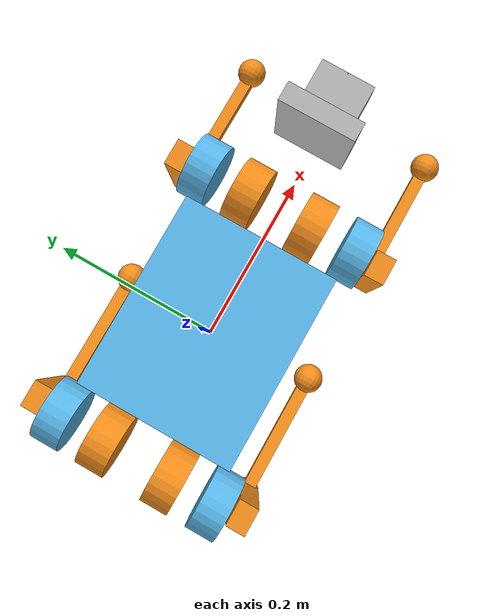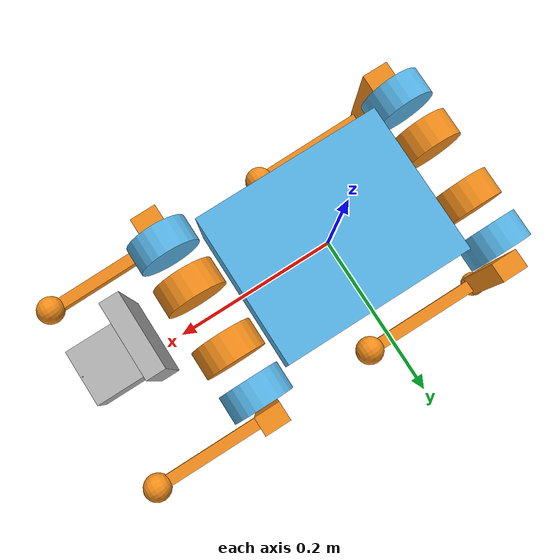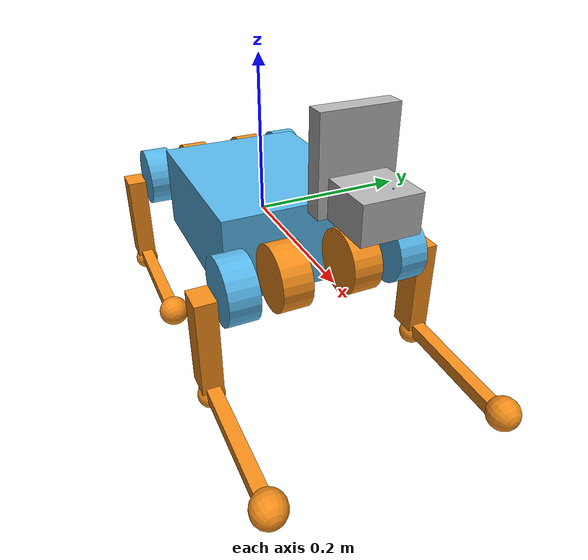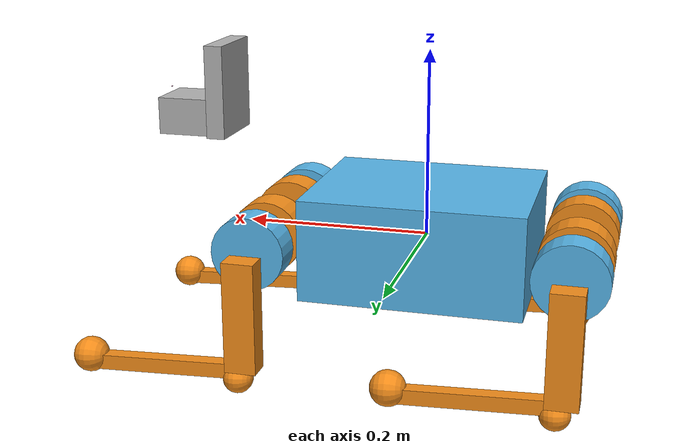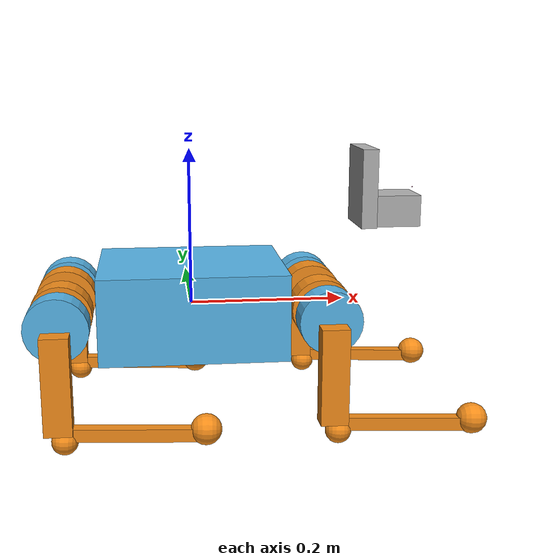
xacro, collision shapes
<?xml version="1.0"?>
<robot name="cyber_dog" xmlns:xacro="http://www.ros.org/wiki/xacro">

    <xacro:arg name="ROBOT" default="cyber_dog" />
    <xacro:arg name="USE_LIDAR" default="false" />
    <xacro:include filename="const.xacro" />
    <xacro:include filename="leg.xacro" />
    <xacro:include filename="gazebo.xacro" />

    <link name="base_link">
        <visual>
            <origin rpy="0 0 0" xyz="0 0 0" />
            <geometry>
                <box size="0.001 0.001 0.001" />
            </geometry>
        </visual>
    </link>

    <joint name="floating_base" type="fixed">
        <origin rpy="0 0 0" xyz="0 0 0" />
        <parent link="base_link" />
        <child link="body" />
    </joint>

    <link name="body">
        <visual>
            <origin rpy="0 0 0" xyz="0 0 0" />
            <geometry>
                <mesh filename="file://$(find cyberdog_description)/meshes/body.dae" scale="1 1 1" />
            </geometry>
        </visual>
        <collision>
            <origin rpy="0 0 0" xyz="0 0 0" />
            <geometry>
                <box size="${body_length} ${body_width} ${body_height}" />
            </geometry>
        </collision>
        <inertial>
            <origin rpy="0 0 0" xyz="${body_com_x} ${body_com_y} ${body_com_z}" />
            <mass value="${body_mass}" />
            <inertia ixx="${body_ixx}" ixy="${body_ixy}" ixz="${body_ixz}" iyy="${body_iyy}" iyz="${body_iyz}" izz="${body_izz}" />
        </inertial>
    </link>

    <joint name="imu_joint" type="fixed">
        <parent link="body" />
        <child link="imu_link" />
        <origin rpy="0 0 0" xyz="33.4e-3 -17.2765e-3 51.0469e-3" />
    </joint>

    <link name="imu_link">
        <inertial>
            <mass value="0.001" />
            <origin rpy="0 0 0" xyz="0 0 0" />
            <inertia ixx="0.0001" ixy="0" ixz="0" iyy="0.0001" iyz="0" izz="0.0001" />
        </inertial>
        <visual>
            <origin rpy="0 0 0" xyz="0 0 0" />
            <geometry>
                <box size="0.001 0.001 0.001" />
            </geometry>
        </visual>
        <collision>
            <origin rpy="0 0 0" xyz="0 0 0" />
            <geometry>
                <box size=".001 .001 .001" />
            </geometry>
        </collision>
    </link>

    <joint name="scan_joint" type="fixed">
        <parent link="body" />
        <child link="lidar_link" />
        <origin rpy="0 0 0" xyz="0.21425 0 0.0908" />
    </joint>

    <link name="lidar_link">
      <inertial>
            <mass value="0.001" />
            <origin rpy="0 0 0" xyz="0 0 0" />
            <inertia ixx="0.0001" ixy="0" ixz="0" iyy="0.0001" iyz="0" izz="0.0001" />
      </inertial>
    </link>

    <joint name="D435_camera_joint" type="fixed">
        <parent link="body" />
        <child link="D435_camera_link" />
        <origin rpy="0 0 0" xyz="271.994e-3 25e-3 114.912e-3" />
    </joint>

    <link name="D435_camera_link">
        <inertial>
            <mass value="0.001" />
            <origin rpy="0 0 0" xyz="0 0 0" />
            <inertia ixx="0.0001" ixy="0" ixz="0" iyy="0.0001" iyz="0" izz="0.0001" />
        </inertial>
        <visual>
            <origin rpy="0 0 0" xyz="0 0 0" />
            <geometry>
                <box size="0.001 0.001 0.001" />
            </geometry>
        </visual>
        <collision>
            <origin rpy="0 0 0" xyz="0 0 0" />
            <geometry>
                <box size=".001 .001 .001" />
            </geometry>
        </collision>
    </link>

    <joint name="RGB_camera_joint" type="fixed">
        <parent link="body" />
        <child link="RGB_camera_link" />
        <origin rpy="0 0 0" xyz="275.76e-3 0 125.794e-3" />
    </joint>

    <link name="RGB_camera_link">
        <inertial>
            <mass value="0.001" />
            <origin rpy="0 0 0" xyz="0 0 0" />
            <inertia ixx="0.0001" ixy="0" ixz="0" iyy="0.0001" iyz="0" izz="0.0001" />
        </inertial>
        <visual>
            <origin rpy="0 0 0" xyz="0 0 0" />
            <geometry>
                <box size="0.001 0.001 0.001" />
            </geometry>
        </visual>
        <collision>
            <origin rpy="0 0 0" xyz="0 0 0" />
            <geometry>
                <box size=".001 .001 .001" />
            </geometry>
        </collision>
    </link>

    <joint name="AI_camera_joint" type="fixed">
        <parent link="body" />
        <child link="AI_camera_link" />
        <origin rpy="0 0 0" xyz="290.228e-3 0 147.420e-3" />
    </joint>

    <link name="AI_camera_link">
        <inertial>
            <mass value="0.001" />
            <origin rpy="0 0 0" xyz="0 0 0" />
            <inertia ixx="0.0001" ixy="0" ixz="0" iyy="0.0001" iyz="0" izz="0.0001" />
        </inertial>
        <visual>
            <origin rpy="0 0 0" xyz="0 0 0" />
            <geometry>
                <box size="0.001 0.001 0.001" />
            </geometry>
        </visual>
        <collision>
            <origin rpy="0 0 0" xyz="0 0 0" />
            <geometry>
                <box size=".001 .001 .001" />
            </geometry>
        </collision>
    </link>

    <xacro:leg name="FR" mirror="-1" mirror_dae="False" front_hind="1" front_hind_dae="True">
        <origin rpy="0 0 0" xyz="${abad_offset_x} ${-abad_offset_y} 0" />
    </xacro:leg>

    <xacro:leg name="FL" mirror="1" mirror_dae="True" front_hind="1" front_hind_dae="True">
        <origin rpy="0 0 0" xyz="${abad_offset_x} ${abad_offset_y} 0" />
    </xacro:leg>

    <xacro:leg name="RR" mirror="-1" mirror_dae="False" front_hind="-1" front_hind_dae="False">
        <origin rpy="0 0 0" xyz="${-abad_offset_x} ${-abad_offset_y} 0" />
    </xacro:leg>

    <xacro:leg name="RL" mirror="1" mirror_dae="True" front_hind="-1" front_hind_dae="False">
        <origin rpy="0 0 0" xyz="${-abad_offset_x} ${abad_offset_y} 0" />
    </xacro:leg>

    <!-- This link is only for head collision -->
    <joint name="head_joint" type="fixed">
        <parent link="body" />
        <child link="head" />
        <origin rpy="0 0 0" xyz="0 0 0" />
    </joint>
    <link name="head">
        <collision>
            <origin rpy="0 0 0" xyz="0.256 0 0.120" />
            <geometry>
                <box size="0.076 0.060 0.040" />
            </geometry>
        </collision>
        <collision>
            <origin rpy="0 0 0" xyz="0.225 0 0.150" />
            <geometry>
                <box size="0.020 0.080 0.100" />
            </geometry>
        </collision>
    </link>

</robot>

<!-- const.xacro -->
<robot name="cyberdog" xmlns:xacro="http://www.ros.org/wiki/xacro">

    <xacro:property name="PI" value="3.1415926535897931" />

    <!-- dimension -->
    <!-- body -->
    <xacro:property name="body_width" value="0.190" />
    <xacro:property name="body_length" value="0.236" />
    <xacro:property name="body_height" value="0.109" />

    <!-- abad -->
    <xacro:property name="abad_radius" value="0.039" />
    <xacro:property name="abad_length" value="0.035" />
    <xacro:property name="abad_offset_x" value="0.164" />
    <xacro:property name="abad_offset_y" value="0.042" />
    <xacro:property name="abad_rotor_offset" value="0.0642303" />
    <xacro:property name="abad_max" value="39" />
    <xacro:property name="abad_min" value="-39" />

    <!-- hip -->
    <xacro:property name="hip_shoulder_radius" value="0.039" />
    <xacro:property name="hip_shoulder_length" value="0.035" />
    <xacro:property name="hip_width" value="0.0250" />
    <xacro:property name="hip_height" value="0.034" />
    <xacro:property name="hip_offset" value="0.094" />
    <xacro:property name="hip_length" value="0.12" />
    <xacro:property name="hip_rotor_offset" value="-0.07577" />
    <xacro:property name="hip_f_max" value="160" />
    <xacro:property name="hip_f_min" value="-76" />
    <xacro:property name="hip_h_max" value="180" />
    <xacro:property name="hip_h_min" value="-56" />

    <!-- knee -->
    <xacro:property name="knee_width" value="0.016" />
    <xacro:property name="knee_height" value="0.016" />
    <xacro:property name="knee_length" value="0.18341" />
    <xacro:property name="knee_rotor_offset" value="-0.0342303" />
    <xacro:property name="knee_max" value="-30" />
    <xacro:property name="knee_min" value="-145" />
    <xacro:property name="knee_rubber" value="0.02" />

    <!-- foot -->
    <xacro:property name="foot_radius" value="0.019" />

    <!-- acuator atribute -->
    <xacro:property name="abadGearRatio" value="7.75" />
    <xacro:property name="hipGearRatio" value="7.75" />
    <xacro:property name="kneeGearRatio" value="7.75" />
    <xacro:property name="abad_motorTauMax" value="1.5484" />
    <xacro:property name="hip_motorTauMax" value="1.5484" />
    <xacro:property name="knee_motorTauMax" value="1.5484" />
    <xacro:property name="abad_motorVelMax" value="30.9971" />
    <xacro:property name="hip_motorVelMax" value="30.9971" />
    <xacro:property name="knee_motorVelMax" value="30.9971" />
    <xacro:property name="abad_damping" value="0.01" />
    <xacro:property name="hip_damping" value="0.01" />
    <xacro:property name="knee_damping" value="0.01" />
    <xacro:property name="abad_friction" value="0.1" />
    <xacro:property name="hip_friction" value="0.1" />
    <xacro:property name="knee_friction" value="0.1" />

    <!-- inertial&mass value -->
    <!-- body -->
    <xacro:property name="body_mass" value="4.030000000" />
    <xacro:property name="body_com_x" value="0.027300000" />
    <xacro:property name="body_com_y" value="-0.000242000" />
    <xacro:property name="body_com_z" value="0.014300000" />
    <xacro:property name="body_ixx" value="0.018500000" />
    <xacro:property name="body_ixy" value="-0.000173000" />
    <xacro:property name="body_ixz" value="-0.010200000" />
    <xacro:property name="body_iyy" value="0.051700000" />
    <xacro:property name="body_iyz" value="-0.000028300" />
    <xacro:property name="body_izz" value="0.048300000" />

    <!-- abad -->
    <xacro:property name="abad_mass" value="0.354000000" />
    <xacro:property name="abad_com_x" value="-0.003920000" />
    <xacro:property name="abad_com_y" value="0.015000000" />
    <xacro:property name="abad_com_z" value="-0.000306000" />
    <xacro:property name="abad_ixx" value="0.000190000" />
    <xacro:property name="abad_ixy" value="-0.000027000" />
    <xacro:property name="abad_ixz" value="-0.000000344" />
    <xacro:property name="abad_iyy" value="0.000276000" />
    <xacro:property name="abad_iyz" value="0.000001950" />
    <xacro:property name="abad_izz" value="0.000233000" />

    <!-- hip -->
    <xacro:property name="hip_mass" value="0.482000000" />
    <xacro:property name="hip_com_x" value="-0.002120000" />
    <xacro:property name="hip_com_y" value="-0.021200000" />
    <xacro:property name="hip_com_z" value="-0.018400000" />
    <xacro:property name="hip_ixx" value="0.001010000" />
    <xacro:property name="hip_ixy" value="0.000022300" />
    <xacro:property name="hip_ixz" value="-0.000038500" />
    <xacro:property name="hip_iyy" value="0.000983000" />
    <xacro:property name="hip_iyz" value="0.000199000" />
    <xacro:property name="hip_izz" value="0.000347000" />

    <!-- knee -->
    <xacro:property name="knee_mass" value="0.116000000" />
    <xacro:property name="knee_com_x" value="0.000600000" />
    <xacro:property name="knee_com_y" value="-0.000047200" />
    <xacro:property name="knee_com_z" value="-0.089300000" />
    <xacro:property name="knee_ixx" value="0.000668000" />
    <xacro:property name="knee_ixy" value="0.000000003" />
    <xacro:property name="knee_ixz" value="0.000023700" />
    <xacro:property name="knee_iyy" value="0.000674000" />
    <xacro:property name="knee_iyz" value="0.000000603" />
    <xacro:property name="knee_izz" value="0.000015400" />

    <!-- rotor -->
    <xacro:property name="rotor_mass" value="0.056700000" />
    <xacro:property name="rotor_com_x" value="0" />
    <xacro:property name="rotor_com_y" value="0" />
    <xacro:property name="rotor_com_z" value="0" />
    <xacro:property name="rotor_ixx" value="0.000025300" />
    <xacro:property name="rotor_ixy" value="0" />
    <xacro:property name="rotor_ixz" value="0" />
    <xacro:property name="rotor_iyy" value="0.000047800" />
    <xacro:property name="rotor_iyz" value="0" />
    <xacro:property name="rotor_izz" value="0.000025300" />
</robot>

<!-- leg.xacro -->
<robot xmlns:xacro="http://www.ros.org/wiki/xacro">

    <xacro:include filename="$(find cyberdog_description)/xacro/transmission.xacro" />

    <xacro:macro name="leg" params="name mirror mirror_dae front_hind front_hind_dae *origin">

        <joint name="${name}_abad_joint" type="revolute">
            <xacro:insert_block name="origin" />
            <parent link="body" />
            <child link="${name}_abad" />
            <axis xyz="1 0 0" />
            <dynamics damping="${abad_damping}" friction="${abad_friction}" />
            <xacro:if value="${(mirror_dae == True)}">
                <limit effort="${abad_motorTauMax*abadGearRatio}"
                    velocity="${abad_motorVelMax}" lower="${abad_min*PI/180.0}"
                    upper="${abad_max*PI/180.0}" />
            </xacro:if>
            <xacro:if value="${(mirror_dae == False)}">
                <limit effort="${abad_motorTauMax*abadGearRatio}"
                    velocity="${abad_motorVelMax}" lower="${-abad_max*PI/180.0}"
                    upper="${-abad_min*PI/180.0}" />
            </xacro:if>
        </joint>

        <link name="${name}_abad">
            <visual>
                <xacro:if value="${(mirror_dae == True) and (front_hind_dae == True)}">
                    <origin rpy="0 0 0" xyz="0 0 0" />
                </xacro:if>
                <xacro:if value="${(mirror_dae == False) and (front_hind_dae == True)}">
                    <origin rpy="${PI} 0 0" xyz="0 0 0" />
                </xacro:if>
                <xacro:if value="${(mirror_dae == True) and (front_hind_dae == False)}">
                    <origin rpy="0 ${PI} 0" xyz="0 0 0" />
                </xacro:if>
                <xacro:if value="${(mirror_dae == False) and (front_hind_dae == False)}">
                    <origin rpy="${PI} ${PI} 0" xyz="0 0 0" />
                </xacro:if>
                <geometry>
                    <mesh filename="file://$(find cyberdog_description)/meshes/abad.dae" scale="1 1 1" />
                </geometry>
                <material name="orange" />
            </visual>
            <collision>
                <origin rpy="${PI/2.0} 0 0" xyz="0 0 0" />
                <geometry>
                    <cylinder length="${abad_length}" radius="${abad_radius}" />
                </geometry>
            </collision>
            <inertial>
                <origin rpy="0 0 0"
                    xyz="${abad_com_x*front_hind} ${abad_com_y*mirror} ${abad_com_z}" />
                <mass value="${abad_mass}" />
                <inertia ixx="${abad_ixx}" ixy="${abad_ixy*mirror*front_hind}"
                    ixz="${abad_ixz*front_hind}" iyy="${abad_iyy}" iyz="${abad_iyz*mirror}"
                    izz="${abad_izz}" />
            </inertial>
        </link>

        <joint name="${name}_abad_rotor_fix" type="fixed">
            <origin rpy="0 0 0" xyz="${-abad_rotor_offset*front_hind} 0 0" />
            <parent link="${name}_abad" />
            <child link="${name}_abad_rotor" />
        </joint>

        <!-- this link is only for abad rotor inertial -->
        <link name="${name}_abad_rotor">
            <inertial>
                <origin rpy="0 0 0" xyz="${rotor_com_x} ${rotor_com_y} ${rotor_com_z}" />
                <mass value="${rotor_mass}" />
                <inertia ixx="${rotor_ixx}" ixy="${rotor_ixy}" ixz="${rotor_ixz}" iyy="${rotor_iyy}" iyz="${rotor_iyz}" izz="${rotor_izz}" />
            </inertial>
        </link>

        <joint name="${name}_abad_fixed" type="fixed">
            <origin rpy="0 0 0" xyz="0 ${(hip_offset-hip_shoulder_length)*mirror} 0" />
            <parent link="${name}_abad" />
            <child link="${name}_hip_shoulder" />
        </joint>

        <link name="${name}_hip_shoulder">
            <collision>
                <origin rpy="${PI/2.0} 0 0" xyz="0 0 0" />
                <geometry>
                    <cylinder length="${hip_shoulder_length}" radius="${hip_shoulder_radius}" />
                </geometry>
            </collision>
        </link>

        <joint name="${name}_hip_joint" type="revolute">
            <origin rpy="0 0 0" xyz="0 ${hip_offset*mirror} 0" />
            <parent link="${name}_abad" />
            <child link="${name}_hip" />
            <axis xyz="0 1 0" />
            <dynamics damping="${hip_damping}" friction="${hip_friction}" />
            <xacro:if value="${front_hind_dae == True}">
                <limit effort="${hip_motorTauMax*hipGearRatio}"
                    velocity="${hip_motorVelMax}" lower="${hip_f_min*PI/180.0}"
                    upper="${hip_f_max*PI/180.0}" />
            </xacro:if>
            <xacro:if value="${front_hind_dae == False}">
                <limit effort="${hip_motorTauMax*hipGearRatio}"
                    velocity="${hip_motorVelMax}" lower="${hip_h_min*PI/180.0}"
                    upper="${hip_h_max*PI/180.0}" />
            </xacro:if>
        </joint>

        <link name="${name}_hip">
            <visual>
                <origin rpy="0 0 0" xyz="0 0 0" />
                <geometry>
                    <xacro:if value="${mirror_dae == True}">
                        <mesh filename="file://$(find cyberdog_description)/meshes/hip.dae"
                            scale="1 1 1" />
                    </xacro:if>
                    <xacro:if value="${mirror_dae == False}">
                        <mesh filename="file://$(find cyberdog_description)/meshes/hip_mirror.dae"
                            scale="1 1 1" />
                    </xacro:if>
                </geometry>
                <material name="orange" />
            </visual>
            <collision>
                <origin rpy="0 ${PI/2.0} 0" xyz="0 0 ${-hip_length/2.0}" />
                <geometry>
                    <box size="${hip_length} ${hip_width} ${hip_height}" />
                </geometry>
            </collision>
            <inertial>
                <origin rpy="0 0 0" xyz="${hip_com_x} ${hip_com_y*mirror} ${hip_com_z}" />
                <mass value="${hip_mass}" />
                <inertia ixx="${hip_ixx}" ixy="${hip_ixy*mirror}" ixz="${hip_ixz}" iyy="${hip_iyy}"
                    iyz="${hip_iyz*mirror}" izz="${hip_izz}" />
            </inertial>
        </link>

                <joint name="${name}_hip_rotor_fix" type="fixed">
            <origin rpy="0 0 0" xyz="0 ${hip_rotor_offset*mirror} 0" />
            <parent link="${name}_hip" />
            <child link="${name}_hip_rotor" />
        </joint>

        <!-- this link is only for hip rotor inertial -->
        <link name="${name}_hip_rotor">
            <inertial>
                <origin rpy="0 0 0" xyz="${rotor_com_x} ${rotor_com_y} ${rotor_com_z}" />
                <mass value="${rotor_mass}" />
                <inertia ixx="${rotor_ixx}" ixy="${rotor_ixy}" ixz="${rotor_ixz}" iyy="${rotor_iyy}" iyz="${rotor_iyz}" izz="${rotor_izz}" />
            </inertial>
        </link>

        <joint name="${name}_knee_rotor_fix" type="fixed">
            <origin rpy="0 0 0" xyz="0 ${knee_rotor_offset*mirror} 0" />
            <parent link="${name}_hip" />
            <child link="${name}_knee_rotor" />
        </joint>

        <!-- this link is only for knee rotor inertial -->
        <link name="${name}_knee_rotor">
            <inertial>
                <origin rpy="0 0 0" xyz="${rotor_com_x} ${rotor_com_y} ${rotor_com_z}" />
                <mass value="${rotor_mass}" />
                <inertia ixx="${rotor_ixx}" ixy="${rotor_ixy}" ixz="${rotor_ixz}" iyy="${rotor_iyy}" iyz="${rotor_iyz}" izz="${rotor_izz}" />
            </inertial>
        </link>

        <joint name="${name}_knee_joint" type="revolute">
            <origin rpy="0 0 0" xyz="0 0 ${-hip_length}" />
            <parent link="${name}_hip" />
            <child link="${name}_knee" />
            <axis xyz="0 1 0" />
            <dynamics damping="${hip_damping}" friction="${hip_friction}" />
            <limit effort="${knee_motorTauMax*kneeGearRatio}"
                velocity="${knee_motorVelMax}" lower="${knee_min*PI/180.0}"
                upper="${knee_max*PI/180.0}" />
        </joint>

        <link name="${name}_knee">
            <visual>
                <origin rpy="0 0 0" xyz="0 0 0" />
                <geometry>
                    <mesh filename="file://$(find cyberdog_description)/meshes/knee.dae" scale="1 1 1" />
                </geometry>
                <material name="orange" />
            </visual>
            <collision>
                <origin rpy="0 ${PI} 0" xyz="0 0 ${-knee_length/2.0}" />
                <geometry>
                    <box size="${knee_height} ${knee_width} ${knee_length}" />
                </geometry>
            </collision>
            <collision name="${name}_knee_rubber">
                <origin rpy="0 ${PI} 0" xyz="${-knee_rubber/2.0} 0 -0.007" />
                <geometry>
                    <sphere radius="0.016" />
                </geometry>
                <surface>
                    <contact>
                        <ode>
                            <max_vel>0.00001</max_vel>
                            <min_depth>0.0</min_depth>
                        </ode>
                    </contact>
                </surface>
            </collision>
            <inertial>
                <origin rpy="0 0 0" xyz="${knee_com_x} ${knee_com_y} ${knee_com_z}" />
                <mass value="${knee_mass}" />
                <inertia ixx="${knee_ixx}" ixy="${knee_ixy}" ixz="${knee_ixz}" iyy="${knee_iyy}"
                    iyz="${knee_iyz}" izz="${knee_izz}" />
            </inertial>
        </link>

        <joint name="${name}_foot_fixed" type="fixed">
            <origin rpy="0 0 0" xyz="0.0055 0 ${-knee_length+foot_radius/2.0}" />
            <parent link="${name}_knee" />
            <child link="${name}_foot" />
        </joint>

        <link name="${name}_foot">
            <visual>
                <origin rpy="0 0 0" xyz="0 0 0" />
                <geometry>
                    <sphere radius="${foot_radius-0.01}" />
                </geometry>
                <material name="orange" />
            </visual>
            <collision>
                <origin rpy="0 0 0" xyz="0 0 0" />
                <geometry>
                    <sphere radius="${foot_radius}" />
                </geometry>
                <surface>
                    <contact>
                        <ode>
                            <max_vel>0.001</max_vel>
                            <min_depth>0.0</min_depth>
                        </ode>
                    </contact>
                </surface>
            </collision>
        </link>

        <xacro:leg_transmission name="${name}" />
    </xacro:macro>
</robot>
